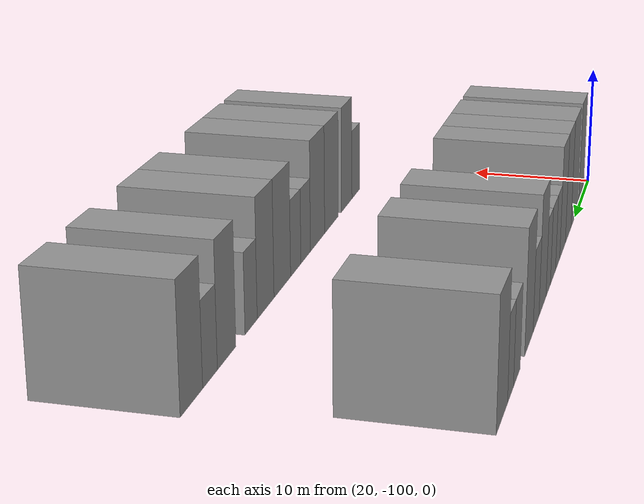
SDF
<sdf version="1.6">
 <world name="default">
  <model name="building_26">
   <static>1</static>
   <pose>25.0000 -94.3275 0 0.000000 0.000000 0.000000</pose>
   <link name="link">
    <pose>0 0 4.50 0 0 0</pose>
    <collision name="collision"><geometry><box><size>10.0000 3.7225 9.0000</size></box></geometry></collision>
    <visual name="visual">
     <cast_shadows>0</cast_shadows>
     <geometry><box><size>10.0000 3.7225 9.0000</size></box></geometry>
     <material>
      <script>
       <uri>model://grey_wall/materials/scripts</uri>
       <uri>model://grey_wall/materials/textures</uri>
       <name>vrc/grey_wall</name>
      </script>
     </material>
    </visual>
   </link>
  </model>
  <model name="building_27">
   <static>1</static>
   <pose>25.0000 -89.3020 0 0.000000 0.000000 0.000000</pose>
   <link name="link">
    <pose>0 0 4.50 0 0 0</pose>
    <collision name="collision"><geometry><box><size>10.0000 4.3286 9.0000</size></box></geometry></collision>
    <visual name="visual">
     <cast_shadows>0</cast_shadows>
     <geometry><box><size>10.0000 4.3286 9.0000</size></box></geometry>
     <material>
      <script>
       <uri>model://grey_wall/materials/scripts</uri>
       <uri>model://grey_wall/materials/textures</uri>
       <name>vrc/grey_wall</name>
      </script>
     </material>
    </visual>
   </link>
  </model>
  <model name="building_28">
   <static>1</static>
   <pose>25.0000 -85.2494 0 0.000000 0.000000 0.000000</pose>
   <link name="link">
    <pose>0 0 4.50 0 0 0</pose>
    <collision name="collision"><geometry><box><size>10.0000 3.7765 9.0000</size></box></geometry></collision>
    <visual name="visual">
     <cast_shadows>0</cast_shadows>
     <geometry><box><size>10.0000 3.7765 9.0000</size></box></geometry>
     <material>
      <script>
       <uri>model://grey_wall/materials/scripts</uri>
       <uri>model://grey_wall/materials/textures</uri>
       <name>vrc/grey_wall</name>
      </script>
     </material>
    </visual>
   </link>
  </model>
  <model name="building_29">
   <static>1</static>
   <pose>25.0000 -81.5595 0 0.000000 0.000000 0.000000</pose>
   <link name="link">
    <pose>0 0 4.50 0 0 0</pose>
    <collision name="collision"><geometry><box><size>10.0000 3.6033 9.0000</size></box></geometry></collision>
    <visual name="visual">
     <cast_shadows>0</cast_shadows>
     <geometry><box><size>10.0000 3.6033 9.0000</size></box></geometry>
     <material>
      <script>
       <uri>model://grey_wall/materials/scripts</uri>
       <uri>model://grey_wall/materials/textures</uri>
       <name>vrc/grey_wall</name>
      </script>
     </material>
    </visual>
   </link>
  </model>
  <model name="building_30">
   <static>1</static>
   <pose>25.0000 -78.4887 0 0.000000 0.000000 0.000000</pose>
   <link name="link">
    <pose>0 0 3.00 0 0 0</pose>
    <collision name="collision"><geometry><box><size>10.0000 2.5384 6.0000</size></box></geometry></collision>
    <visual name="visual">
     <cast_shadows>0</cast_shadows>
     <geometry><box><size>10.0000 2.5384 6.0000</size></box></geometry>
     <material>
      <script>
       <uri>model://grey_wall/materials/scripts</uri>
       <uri>model://grey_wall/materials/textures</uri>
       <name>vrc/grey_wall</name>
      </script>
     </material>
    </visual>
   </link>
  </model>
  <model name="building_31">
   <static>1</static>
   <pose>25.0000 -75.7399 0 0.000000 0.000000 0.000000</pose>
   <link name="link">
    <pose>0 0 3.00 0 0 0</pose>
    <collision name="collision"><geometry><box><size>10.0000 2.9591 6.0000</size></box></geometry></collision>
    <visual name="visual">
     <cast_shadows>0</cast_shadows>
     <geometry><box><size>10.0000 2.9591 6.0000</size></box></geometry>
     <material>
      <script>
       <uri>model://grey_wall/materials/scripts</uri>
       <uri>model://grey_wall/materials/textures</uri>
       <name>vrc/grey_wall</name>
      </script>
     </material>
    </visual>
   </link>
  </model>
  <model name="building_32">
   <static>1</static>
   <pose>25.0000 -73.0192 0 0.000000 0.000000 0.000000</pose>
   <link name="link">
    <pose>0 0 3.00 0 0 0</pose>
    <collision name="collision"><geometry><box><size>10.0000 2.4824 6.0000</size></box></geometry></collision>
    <visual name="visual">
     <cast_shadows>0</cast_shadows>
     <geometry><box><size>10.0000 2.4824 6.0000</size></box></geometry>
     <material>
      <script>
       <uri>model://grey_wall/materials/scripts</uri>
       <uri>model://grey_wall/materials/textures</uri>
       <name>vrc/grey_wall</name>
      </script>
     </material>
    </visual>
   </link>
  </model>
  <model name="building_33">
   <static>1</static>
   <pose>25.0000 -69.9044 0 0.000000 0.000000 0.000000</pose>
   <link name="link">
    <pose>0 0 4.50 0 0 0</pose>
    <collision name="collision"><geometry><box><size>10.0000 3.7471 9.0000</size></box></geometry></collision>
    <visual name="visual">
     <cast_shadows>0</cast_shadows>
     <geometry><box><size>10.0000 3.7471 9.0000</size></box></geometry>
     <material>
      <script>
       <uri>model://grey_wall/materials/scripts</uri>
       <uri>model://grey_wall/materials/textures</uri>
       <name>vrc/grey_wall</name>
      </script>
     </material>
    </visual>
   </link>
  </model>
  <model name="building_34">
   <static>1</static>
   <pose>25.0000 -66.5628 0 0.000000 0.000000 0.000000</pose>
   <link name="link">
    <pose>0 0 3.00 0 0 0</pose>
    <collision name="collision"><geometry><box><size>10.0000 2.9362 6.0000</size></box></geometry></collision>
    <visual name="visual">
     <cast_shadows>0</cast_shadows>
     <geometry><box><size>10.0000 2.9362 6.0000</size></box></geometry>
     <material>
      <script>
       <uri>model://grey_wall/materials/scripts</uri>
       <uri>model://grey_wall/materials/textures</uri>
       <name>vrc/grey_wall</name>
      </script>
     </material>
    </visual>
   </link>
  </model>
  <model name="building_35">
   <static>1</static>
   <pose>25.0000 -63.0881 0 0.000000 0.000000 0.000000</pose>
   <link name="link">
    <pose>0 0 4.50 0 0 0</pose>
    <collision name="collision"><geometry><box><size>10.0000 4.0131 9.0000</size></box></geometry></collision>
    <visual name="visual">
     <cast_shadows>0</cast_shadows>
     <geometry><box><size>10.0000 4.0131 9.0000</size></box></geometry>
     <material>
      <script>
       <uri>model://grey_wall/materials/scripts</uri>
       <uri>model://grey_wall/materials/textures</uri>
       <name>vrc/grey_wall</name>
      </script>
     </material>
    </visual>
   </link>
  </model>
  <model name="building_36">
   <static>1</static>
   <pose>25.0000 -57.6339 0 0.000000 0.000000 0.000000</pose>
   <link name="link">
    <pose>0 0 3.00 0 0 0</pose>
    <collision name="collision"><geometry><box><size>10.0000 2.8952 6.0000</size></box></geometry></collision>
    <visual name="visual">
     <cast_shadows>0</cast_shadows>
     <geometry><box><size>10.0000 2.8952 6.0000</size></box></geometry>
     <material>
      <script>
       <uri>model://grey_wall/materials/scripts</uri>
       <uri>model://grey_wall/materials/textures</uri>
       <name>vrc/grey_wall</name>
      </script>
     </material>
    </visual>
   </link>
  </model>
  <model name="building_37">
   <static>1</static>
   <pose>25.0000 -54.9619 0 0.000000 0.000000 0.000000</pose>
   <link name="link">
    <pose>0 0 3.00 0 0 0</pose>
    <collision name="collision"><geometry><box><size>10.0000 2.4487 6.0000</size></box></geometry></collision>
    <visual name="visual">
     <cast_shadows>0</cast_shadows>
     <geometry><box><size>10.0000 2.4487 6.0000</size></box></geometry>
     <material>
      <script>
       <uri>model://grey_wall/materials/scripts</uri>
       <uri>model://grey_wall/materials/textures</uri>
       <name>vrc/grey_wall</name>
      </script>
     </material>
    </visual>
   </link>
  </model>
  <model name="building_38">
   <static>1</static>
   <pose>25.0000 -51.5327 0 0.000000 0.000000 0.000000</pose>
   <link name="link">
    <pose>0 0 4.50 0 0 0</pose>
    <collision name="collision"><geometry><box><size>10.0000 4.4098 9.0000</size></box></geometry></collision>
    <visual name="visual">
     <cast_shadows>0</cast_shadows>
     <geometry><box><size>10.0000 4.4098 9.0000</size></box></geometry>
     <material>
      <script>
       <uri>model://grey_wall/materials/scripts</uri>
       <uri>model://grey_wall/materials/textures</uri>
       <name>vrc/grey_wall</name>
      </script>
     </material>
    </visual>
   </link>
  </model>
  <model name="building_130">
   <static>1</static>
   <pose>44.0000 -91.4973 0 0.000000 0.000000 0.000000</pose>
   <link name="link">
    <pose>0 0 3.00 0 0 0</pose>
    <collision name="collision"><geometry><box><size>10.0000 2.7202 6.0000</size></box></geometry></collision>
    <visual name="visual">
     <cast_shadows>0</cast_shadows>
     <geometry><box><size>10.0000 2.7202 6.0000</size></box></geometry>
     <material>
      <script>
       <uri>model://grey_wall/materials/scripts</uri>
       <uri>model://grey_wall/materials/textures</uri>
       <name>vrc/grey_wall</name>
      </script>
     </material>
    </visual>
   </link>
  </model>
  <model name="building_131">
   <static>1</static>
   <pose>44.0000 -88.3110 0 0.000000 0.000000 0.000000</pose>
   <link name="link">
    <pose>0 0 4.50 0 0 0</pose>
    <collision name="collision"><geometry><box><size>10.0000 3.6523 9.0000</size></box></geometry></collision>
    <visual name="visual">
     <cast_shadows>0</cast_shadows>
     <geometry><box><size>10.0000 3.6523 9.0000</size></box></geometry>
     <material>
      <script>
       <uri>model://grey_wall/materials/scripts</uri>
       <uri>model://grey_wall/materials/textures</uri>
       <name>vrc/grey_wall</name>
      </script>
     </material>
    </visual>
   </link>
  </model>
  <model name="building_132">
   <static>1</static>
   <pose>44.0000 -83.2915 0 0.000000 0.000000 0.000000</pose>
   <link name="link">
    <pose>0 0 4.50 0 0 0</pose>
    <collision name="collision"><geometry><box><size>10.0000 4.3868 9.0000</size></box></geometry></collision>
    <visual name="visual">
     <cast_shadows>0</cast_shadows>
     <geometry><box><size>10.0000 4.3868 9.0000</size></box></geometry>
     <material>
      <script>
       <uri>model://grey_wall/materials/scripts</uri>
       <uri>model://grey_wall/materials/textures</uri>
       <name>vrc/grey_wall</name>
      </script>
     </material>
    </visual>
   </link>
  </model>
  <model name="building_133">
   <static>1</static>
   <pose>44.0000 -78.9584 0 0.000000 0.000000 0.000000</pose>
   <link name="link">
    <pose>0 0 4.50 0 0 0</pose>
    <collision name="collision"><geometry><box><size>10.0000 4.2793 9.0000</size></box></geometry></collision>
    <visual name="visual">
     <cast_shadows>0</cast_shadows>
     <geometry><box><size>10.0000 4.2793 9.0000</size></box></geometry>
     <material>
      <script>
       <uri>model://grey_wall/materials/scripts</uri>
       <uri>model://grey_wall/materials/textures</uri>
       <name>vrc/grey_wall</name>
      </script>
     </material>
    </visual>
   </link>
  </model>
  <model name="building_134">
   <static>1</static>
   <pose>44.0000 -75.4547 0 0.000000 0.000000 0.000000</pose>
   <link name="link">
    <pose>0 0 3.00 0 0 0</pose>
    <collision name="collision"><geometry><box><size>10.0000 2.7282 6.0000</size></box></geometry></collision>
    <visual name="visual">
     <cast_shadows>0</cast_shadows>
     <geometry><box><size>10.0000 2.7282 6.0000</size></box></geometry>
     <material>
      <script>
       <uri>model://grey_wall/materials/scripts</uri>
       <uri>model://grey_wall/materials/textures</uri>
       <name>vrc/grey_wall</name>
      </script>
     </material>
    </visual>
   </link>
  </model>
  <model name="building_135">
   <static>1</static>
   <pose>44.0000 -72.6745 0 0.000000 0.000000 0.000000</pose>
   <link name="link">
    <pose>0 0 3.00 0 0 0</pose>
    <collision name="collision"><geometry><box><size>10.0000 2.8321 6.0000</size></box></geometry></collision>
    <visual name="visual">
     <cast_shadows>0</cast_shadows>
     <geometry><box><size>10.0000 2.8321 6.0000</size></box></geometry>
     <material>
      <script>
       <uri>model://grey_wall/materials/scripts</uri>
       <uri>model://grey_wall/materials/textures</uri>
       <name>vrc/grey_wall</name>
      </script>
     </material>
    </visual>
   </link>
  </model>
  <model name="building_136">
   <static>1</static>
   <pose>44.0000 -69.1069 0 0.000000 0.000000 0.000000</pose>
   <link name="link">
    <pose>0 0 4.50 0 0 0</pose>
    <collision name="collision"><geometry><box><size>10.0000 4.3031 9.0000</size></box></geometry></collision>
    <visual name="visual">
     <cast_shadows>0</cast_shadows>
     <geometry><box><size>10.0000 4.3031 9.0000</size></box></geometry>
     <material>
      <script>
       <uri>model://grey_wall/materials/scripts</uri>
       <uri>model://grey_wall/materials/textures</uri>
       <name>vrc/grey_wall</name>
      </script>
     </material>
    </visual>
   </link>
  </model>
  <model name="building_137">
   <static>1</static>
   <pose>44.0000 -64.9108 0 0.000000 0.000000 0.000000</pose>
   <link name="link">
    <pose>0 0 4.50 0 0 0</pose>
    <collision name="collision"><geometry><box><size>10.0000 4.0890 9.0000</size></box></geometry></collision>
    <visual name="visual">
     <cast_shadows>0</cast_shadows>
     <geometry><box><size>10.0000 4.0890 9.0000</size></box></geometry>
     <material>
      <script>
       <uri>model://grey_wall/materials/scripts</uri>
       <uri>model://grey_wall/materials/textures</uri>
       <name>vrc/grey_wall</name>
      </script>
     </material>
    </visual>
   </link>
  </model>
  <model name="building_138">
   <static>1</static>
   <pose>44.0000 -61.4603 0 0.000000 0.000000 0.000000</pose>
   <link name="link">
    <pose>0 0 3.00 0 0 0</pose>
    <collision name="collision"><geometry><box><size>10.0000 2.8120 6.0000</size></box></geometry></collision>
    <visual name="visual">
     <cast_shadows>0</cast_shadows>
     <geometry><box><size>10.0000 2.8120 6.0000</size></box></geometry>
     <material>
      <script>
       <uri>model://grey_wall/materials/scripts</uri>
       <uri>model://grey_wall/materials/textures</uri>
       <name>vrc/grey_wall</name>
      </script>
     </material>
    </visual>
   </link>
  </model>
  <model name="building_139">
   <static>1</static>
   <pose>44.0000 -56.1075 0 0.000000 0.000000 0.000000</pose>
   <link name="link">
    <pose>0 0 4.50 0 0 0</pose>
    <collision name="collision"><geometry><box><size>10.0000 3.8936 9.0000</size></box></geometry></collision>
    <visual name="visual">
     <cast_shadows>0</cast_shadows>
     <geometry><box><size>10.0000 3.8936 9.0000</size></box></geometry>
     <material>
      <script>
       <uri>model://grey_wall/materials/scripts</uri>
       <uri>model://grey_wall/materials/textures</uri>
       <name>vrc/grey_wall</name>
      </script>
     </material>
    </visual>
   </link>
  </model>
  <model name="building_140">
   <static>1</static>
   <pose>44.0000 -52.7035 0 0.000000 0.000000 0.000000</pose>
   <link name="link">
    <pose>0 0 3.00 0 0 0</pose>
    <collision name="collision"><geometry><box><size>10.0000 2.9144 6.0000</size></box></geometry></collision>
    <visual name="visual">
     <cast_shadows>0</cast_shadows>
     <geometry><box><size>10.0000 2.9144 6.0000</size></box></geometry>
     <material>
      <script>
       <uri>model://grey_wall/materials/scripts</uri>
       <uri>model://grey_wall/materials/textures</uri>
       <name>vrc/grey_wall</name>
      </script>
     </material>
    </visual>
   </link>
  </model>
  <model name="building_141">
   <static>1</static>
   <pose>44.0000 -49.1530 0 0.000000 0.000000 0.000000</pose>
   <link name="link">
    <pose>0 0 4.50 0 0 0</pose>
    <collision name="collision"><geometry><box><size>10.0000 4.1867 9.0000</size></box></geometry></collision>
    <visual name="visual">
     <cast_shadows>0</cast_shadows>
     <geometry><box><size>10.0000 4.1867 9.0000</size></box></geometry>
     <material>
      <script>
       <uri>model://grey_wall/materials/scripts</uri>
       <uri>model://grey_wall/materials/textures</uri>
       <name>vrc/grey_wall</name>
      </script>
     </material>
    </visual>
   </link>
  </model>
 </world>
</sdf>
